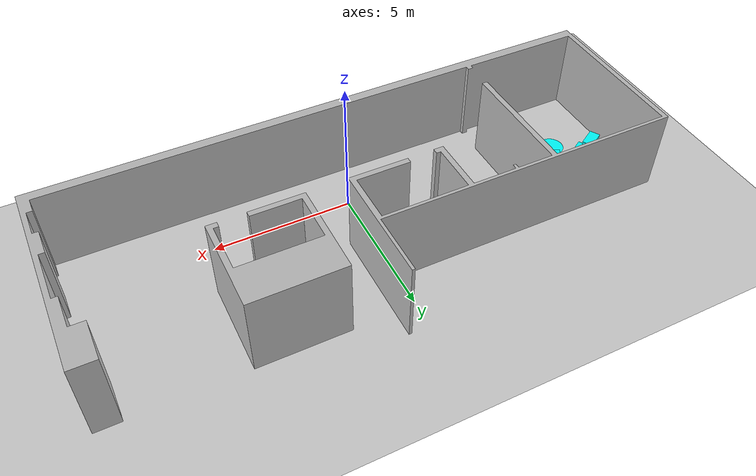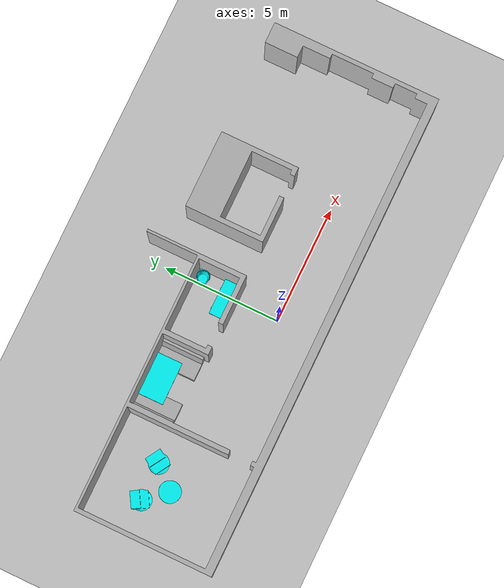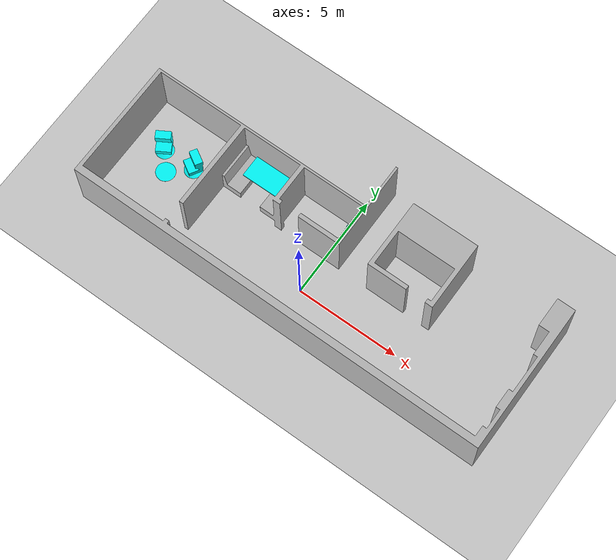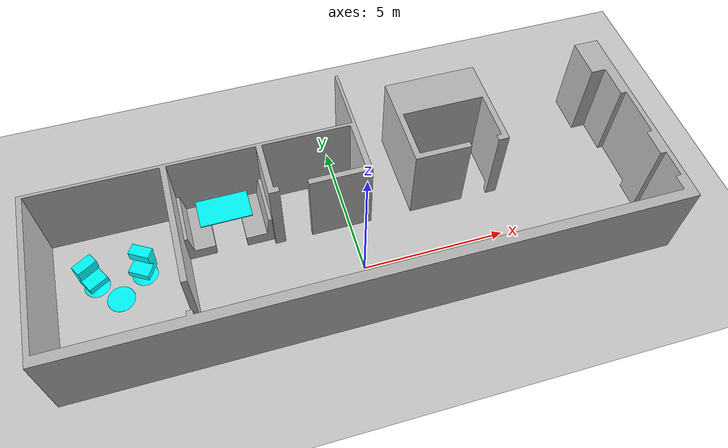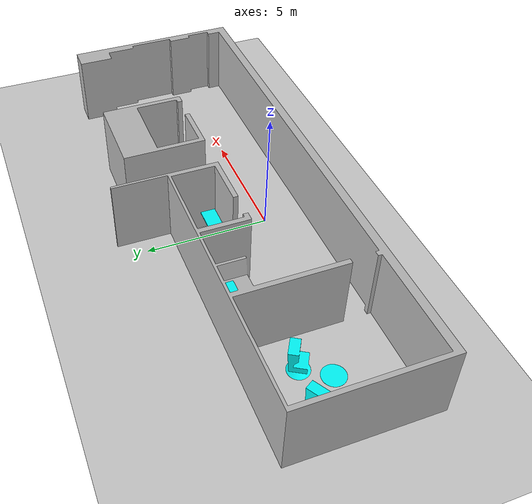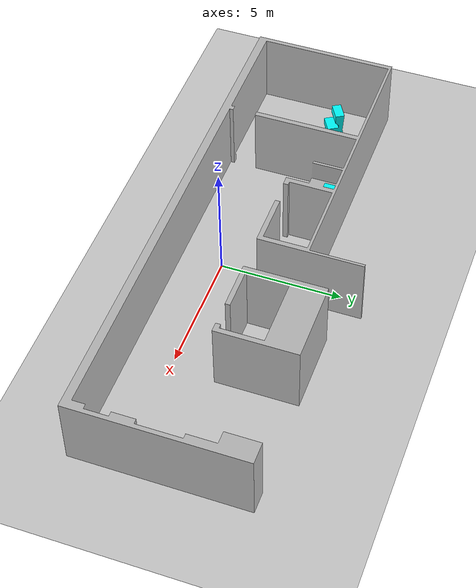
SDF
<sdf version="1.6">
 <world name="default">
  <light name="sun" type="directional">
   <pose>0 0 10 0 -0 0</pose>
   <diffuse>0.8 0.8 0.8 1</diffuse>
   <specular>0.2 0.2 0.2 1</specular>
   <attenuation>
    <range>1000</range>
    <constant>0.9</constant>
    <linear>0.01</linear>
    <quadratic>0.001</quadratic>
   </attenuation>
   <direction>-0.5 0.1 -0.9</direction>
  </light>
  <model name="ground_plane">
   <static>1</static>
   <link name="link">
    <collision name="collision">
     <geometry><plane><normal>0 0 1</normal><size>100 100</size></plane></geometry>
     <surface>
      <contact><collide_bitmask>65535</collide_bitmask></contact>
      <friction><ode><mu>100</mu><mu2>50</mu2></ode></friction>
     </surface>
    </collision>
    <visual name="visual">
     <cast_shadows>0</cast_shadows>
     <geometry><plane><normal>0 0 1</normal><size>100 100</size></plane></geometry>
     <material>
      <script><uri>file://media/materials/scripts/gazebo.material</uri><name>Gazebo/Grey</name></script>
     </material>
    </visual>
   </link>
  </model>
  <gravity>0 0 -9.8</gravity>
  <magnetic_field>6e-06 2.3e-05 -4.2e-05</magnetic_field>
  <atmosphere type="adiabatic"/>
  <physics name="default_physics" default="0" type="ode">
   <max_step_size>0.001</max_step_size>
   <real_time_factor>1</real_time_factor>
   <real_time_update_rate>1000</real_time_update_rate>
  </physics>
  <scene><ambient>0.4 0.4 0.4 1</ambient><background>0.7 0.7 0.7 1</background><shadows>1</shadows></scene>
  <audio><device>default</device></audio>
  <spherical_coordinates>
   <surface_model>EARTH_WGS84</surface_model>
   <latitude_deg>0</latitude_deg>
   <longitude_deg>0</longitude_deg>
   <elevation>0</elevation>
   <heading_deg>0</heading_deg>
  </spherical_coordinates>
  <model name="floorplan">
   <link name="link">
    <inertial>
     <mass>150</mass>
     <inertia><ixx>0</ixx><ixy>0</ixy><ixz>0</ixz><iyy>0</iyy><iyz>0</iyz><izz>1</izz></inertia>
    </inertial>
    <visual name="visual">
     <geometry>
      <mesh><uri>/home/maru/catkin_ws/src/robotics_labs/models/floorplan/meshes/gix216plus.dae</uri></mesh>
     </geometry>
    </visual>
    <collision name="collision">
     <geometry>
      <mesh>
       <uri>/home/maru/catkin_ws/src/robotics_labs/models/floorplan/meshes/gix216plus.dae</uri>
       <scale>1 1 1</scale>
      </mesh>
     </geometry>
     <surface>
      <friction>
       <ode><mu>1</mu><mu2>1</mu2><fdir1>0 0 0</fdir1><slip1>0</slip1><slip2>0</slip2></ode>
       <torsional>
        <coefficient>1</coefficient>
        <patch_radius>0</patch_radius>
        <surface_radius>0</surface_radius>
        <use_patch_radius>1</use_patch_radius>
        <ode><slip>0</slip></ode>
       </torsional>
      </friction>
      <bounce><restitution_coefficient>0</restitution_coefficient><threshold>1e+06</threshold></bounce>
      <contact>
       <collide_without_contact>0</collide_without_contact>
       <collide_without_contact_bitmask>1</collide_without_contact_bitmask>
       <collide_bitmask>1</collide_bitmask>
       <ode>
        <soft_cfm>0</soft_cfm>
        <soft_erp>0.2</soft_erp>
        <kp>1e+13</kp>
        <kd>1</kd>
        <max_vel>0.01</max_vel>
        <min_depth>0</min_depth>
       </ode>
       <bullet>
        <split_impulse>1</split_impulse>
        <split_impulse_penetration_threshold>-0.01</split_impulse_penetration_threshold>
        <soft_cfm>0</soft_cfm>
        <soft_erp>0.2</soft_erp>
        <kp>1e+13</kp>
        <kd>1</kd>
       </bullet>
      </contact>
     </surface>
    </collision>
   </link>
   <static>1</static>
   <pose>0 2 0 0 -0 0</pose>
  </model>
  <model name="wingback_chair">
   <link name="link">
    <inertial>
     <mass>150</mass>
     <inertia><ixx>0</ixx><ixy>0</ixy><ixz>0</ixz><iyy>0</iyy><iyz>0</iyz><izz>1</izz></inertia>
    </inertial>
    <visual name="visual">
     <geometry>
      <mesh>
       <uri>/home/maru/catkin_ws/src/robotics_labs/models/wingback_chair/meshes/wingback_chair_mm.dae</uri>
      </mesh>
     </geometry>
    </visual>
    <collision name="collision">
     <geometry>
      <mesh>
       <uri>/home/maru/catkin_ws/src/robotics_labs/models/wingback_chair/meshes/wingback_chair_mm.dae</uri>
       <scale>1 1 1</scale>
      </mesh>
     </geometry>
     <surface>
      <friction>
       <ode><mu>1</mu><mu2>1</mu2><fdir1>0 0 0</fdir1><slip1>0</slip1><slip2>0</slip2></ode>
       <torsional>
        <coefficient>1</coefficient>
        <patch_radius>0</patch_radius>
        <surface_radius>0</surface_radius>
        <use_patch_radius>1</use_patch_radius>
        <ode><slip>0</slip></ode>
       </torsional>
      </friction>
      <bounce><restitution_coefficient>0</restitution_coefficient><threshold>1e+06</threshold></bounce>
      <contact>
       <collide_without_contact>0</collide_without_contact>
       <collide_without_contact_bitmask>1</collide_without_contact_bitmask>
       <collide_bitmask>1</collide_bitmask>
       <ode>
        <soft_cfm>0</soft_cfm>
        <soft_erp>0.2</soft_erp>
        <kp>1e+13</kp>
        <kd>1</kd>
        <max_vel>0.01</max_vel>
        <min_depth>0</min_depth>
       </ode>
       <bullet>
        <split_impulse>1</split_impulse>
        <split_impulse_penetration_threshold>-0.01</split_impulse_penetration_threshold>
        <soft_cfm>0</soft_cfm>
        <soft_erp>0.2</soft_erp>
        <kp>1e+13</kp>
        <kd>1</kd>
       </bullet>
      </contact>
     </surface>
    </collision>
   </link>
   <static>1</static>
   <pose>-8.82008 1.82005 0 0 -0 0.536406</pose>
  </model>
  <model name="wingback_chair_0">
   <link name="link">
    <inertial>
     <mass>150</mass>
     <inertia><ixx>0</ixx><ixy>0</ixy><ixz>0</ixz><iyy>0</iyy><iyz>0</iyz><izz>1</izz></inertia>
    </inertial>
    <visual name="visual">
     <geometry>
      <mesh>
       <uri>/home/maru/catkin_ws/src/robotics_labs/models/wingback_chair/meshes/wingback_chair_mm.dae</uri>
      </mesh>
     </geometry>
    </visual>
    <collision name="collision">
     <geometry>
      <mesh>
       <uri>/home/maru/catkin_ws/src/robotics_labs/models/wingback_chair/meshes/wingback_chair_mm.dae</uri>
       <scale>1 1 1</scale>
      </mesh>
     </geometry>
     <surface>
      <friction>
       <ode><mu>1</mu><mu2>1</mu2><fdir1>0 0 0</fdir1><slip1>0</slip1><slip2>0</slip2></ode>
       <torsional>
        <coefficient>1</coefficient>
        <patch_radius>0</patch_radius>
        <surface_radius>0</surface_radius>
        <use_patch_radius>1</use_patch_radius>
        <ode><slip>0</slip></ode>
       </torsional>
      </friction>
      <bounce><restitution_coefficient>0</restitution_coefficient><threshold>1e+06</threshold></bounce>
      <contact>
       <collide_without_contact>0</collide_without_contact>
       <collide_without_contact_bitmask>1</collide_without_contact_bitmask>
       <collide_bitmask>1</collide_bitmask>
       <ode>
        <soft_cfm>0</soft_cfm>
        <soft_erp>0.2</soft_erp>
        <kp>1e+13</kp>
        <kd>1</kd>
        <max_vel>0.01</max_vel>
        <min_depth>0</min_depth>
       </ode>
       <bullet>
        <split_impulse>1</split_impulse>
        <split_impulse_penetration_threshold>-0.01</split_impulse_penetration_threshold>
        <soft_cfm>0</soft_cfm>
        <soft_erp>0.2</soft_erp>
        <kp>1e+13</kp>
        <kd>1</kd>
       </bullet>
      </contact>
     </surface>
    </collision>
   </link>
   <static>1</static>
   <pose>-7.21234 1.82 0 0 0 -0.541861</pose>
  </model>
  <model name="coffee_table">
   <link name="link">
    <inertial>
     <mass>150</mass>
     <inertia><ixx>0</ixx><ixy>0</ixy><ixz>0</ixz><iyy>0</iyy><iyz>0</iyz><izz>1</izz></inertia>
    </inertial>
    <visual name="visual">
     <geometry>
      <mesh><uri>/home/maru/catkin_ws/src/robotics_labs/models/coffee_table/meshes/round_table_mm.dae</uri></mesh>
     </geometry>
    </visual>
    <collision name="collision">
     <geometry>
      <mesh>
       <uri>/home/maru/catkin_ws/src/robotics_labs/models/coffee_table/meshes/round_table_mm.dae</uri>
       <scale>1 1 1</scale>
      </mesh>
     </geometry>
     <surface>
      <friction>
       <ode><mu>1</mu><mu2>1</mu2><fdir1>0 0 0</fdir1><slip1>0</slip1><slip2>0</slip2></ode>
       <torsional>
        <coefficient>1</coefficient>
        <patch_radius>0</patch_radius>
        <surface_radius>0</surface_radius>
        <use_patch_radius>1</use_patch_radius>
        <ode><slip>0</slip></ode>
       </torsional>
      </friction>
      <bounce><restitution_coefficient>0</restitution_coefficient><threshold>1e+06</threshold></bounce>
      <contact>
       <collide_without_contact>0</collide_without_contact>
       <collide_without_contact_bitmask>1</collide_without_contact_bitmask>
       <collide_bitmask>1</collide_bitmask>
       <ode>
        <soft_cfm>0</soft_cfm>
        <soft_erp>0.2</soft_erp>
        <kp>1e+13</kp>
        <kd>1</kd>
        <max_vel>0.01</max_vel>
        <min_depth>0</min_depth>
       </ode>
       <bullet>
        <split_impulse>1</split_impulse>
        <split_impulse_penetration_threshold>-0.01</split_impulse_penetration_threshold>
        <soft_cfm>0</soft_cfm>
        <soft_erp>0.2</soft_erp>
        <kp>1e+13</kp>
        <kd>1</kd>
       </bullet>
      </contact>
     </surface>
    </collision>
   </link>
   <static>1</static>
   <pose>-8.02558 0.919014 0 0 -0 0</pose>
  </model>
  <model name="kitchen_station_table">
   <link name="link">
    <inertial>
     <mass>150</mass>
     <inertia><ixx>0</ixx><ixy>0</ixy><ixz>0</ixz><iyy>0</iyy><iyz>0</iyz><izz>1</izz></inertia>
    </inertial>
    <visual name="visual">
     <geometry>
      <mesh>
       <uri>/home/maru/catkin_ws/src/robotics_labs/models/kitchen_station_table/meshes/booth_table_mm.dae</uri>
      </mesh>
     </geometry>
    </visual>
    <collision name="collision">
     <geometry>
      <mesh>
       <uri>/home/maru/catkin_ws/src/robotics_labs/models/kitchen_station_table/meshes/booth_table_mm.dae</uri>
       <scale>1 1 1</scale>
      </mesh>
     </geometry>
     <surface>
      <friction>
       <ode><mu>1</mu><mu2>1</mu2><fdir1>0 0 0</fdir1><slip1>0</slip1><slip2>0</slip2></ode>
       <torsional>
        <coefficient>1</coefficient>
        <patch_radius>0</patch_radius>
        <surface_radius>0</surface_radius>
        <use_patch_radius>1</use_patch_radius>
        <ode><slip>0</slip></ode>
       </torsional>
      </friction>
      <bounce><restitution_coefficient>0</restitution_coefficient><threshold>1e+06</threshold></bounce>
      <contact>
       <collide_without_contact>0</collide_without_contact>
       <collide_without_contact_bitmask>1</collide_without_contact_bitmask>
       <collide_bitmask>1</collide_bitmask>
       <ode>
        <soft_cfm>0</soft_cfm>
        <soft_erp>0.2</soft_erp>
        <kp>1e+13</kp>
        <kd>1</kd>
        <max_vel>0.01</max_vel>
        <min_depth>0</min_depth>
       </ode>
       <bullet>
        <split_impulse>1</split_impulse>
        <split_impulse_penetration_threshold>-0.01</split_impulse_penetration_threshold>
        <soft_cfm>0</soft_cfm>
        <soft_erp>0.2</soft_erp>
        <kp>1e+13</kp>
        <kd>1</kd>
       </bullet>
      </contact>
     </surface>
    </collision>
   </link>
   <static>1</static>
   <pose>-4.16285 3.20384 0 0 0 -1.56686</pose>
  </model>
  <model name="rolling_table">
   <link name="link">
    <inertial>
     <mass>150</mass>
     <inertia><ixx>0</ixx><ixy>0</ixy><ixz>0</ixz><iyy>0</iyy><iyz>0</iyz><izz>1</izz></inertia>
    </inertial>
    <visual name="visual">
     <geometry>
      <mesh>
       <uri>/home/maru/catkin_ws/src/robotics_labs/models/rolling_table/meshes/rolling_table_mm.dae</uri>
      </mesh>
     </geometry>
    </visual>
    <collision name="collision">
     <geometry>
      <mesh>
       <uri>/home/maru/catkin_ws/src/robotics_labs/models/rolling_table/meshes/rolling_table_mm.dae</uri>
       <scale>1 1 1</scale>
      </mesh>
     </geometry>
     <surface>
      <friction>
       <ode><mu>1</mu><mu2>1</mu2><fdir1>0 0 0</fdir1><slip1>0</slip1><slip2>0</slip2></ode>
       <torsional>
        <coefficient>1</coefficient>
        <patch_radius>0</patch_radius>
        <surface_radius>0</surface_radius>
        <use_patch_radius>1</use_patch_radius>
        <ode><slip>0</slip></ode>
       </torsional>
      </friction>
      <bounce><restitution_coefficient>0</restitution_coefficient><threshold>1e+06</threshold></bounce>
      <contact>
       <collide_without_contact>0</collide_without_contact>
       <collide_without_contact_bitmask>1</collide_without_contact_bitmask>
       <collide_bitmask>1</collide_bitmask>
       <ode>
        <soft_cfm>0</soft_cfm>
        <soft_erp>0.2</soft_erp>
        <kp>1e+13</kp>
        <kd>1</kd>
        <max_vel>0.01</max_vel>
        <min_depth>0</min_depth>
       </ode>
       <bullet>
        <split_impulse>1</split_impulse>
        <split_impulse_penetration_threshold>-0.01</split_impulse_penetration_threshold>
        <soft_cfm>0</soft_cfm>
        <soft_erp>0.2</soft_erp>
        <kp>1e+13</kp>
        <kd>1</kd>
       </bullet>
      </contact>
     </surface>
    </collision>
   </link>
   <static>1</static>
   <pose>-0.214959 2.29514 0 0 -0 0</pose>
  </model>
  <model name="trash_can">
   <link name="link">
    <inertial>
     <mass>150</mass>
     <inertia><ixx>0</ixx><ixy>0</ixy><ixz>0</ixz><iyy>0</iyy><iyz>0</iyz><izz>1</izz></inertia>
    </inertial>
    <visual name="visual">
     <geometry>
      <mesh><uri>/home/maru/catkin_ws/src/robotics_labs/models/trash_can/meshes/trash_can_mm.dae</uri></mesh>
     </geometry>
    </visual>
    <collision name="collision">
     <geometry>
      <mesh>
       <uri>/home/maru/catkin_ws/src/robotics_labs/models/trash_can/meshes/trash_can_mm.dae</uri>
       <scale>1 1 1</scale>
      </mesh>
     </geometry>
     <surface>
      <friction>
       <ode><mu>1</mu><mu2>1</mu2><fdir1>0 0 0</fdir1><slip1>0</slip1><slip2>0</slip2></ode>
       <torsional>
        <coefficient>1</coefficient>
        <patch_radius>0</patch_radius>
        <surface_radius>0</surface_radius>
        <use_patch_radius>1</use_patch_radius>
        <ode><slip>0</slip></ode>
       </torsional>
      </friction>
      <bounce><restitution_coefficient>0</restitution_coefficient><threshold>1e+06</threshold></bounce>
      <contact>
       <collide_without_contact>0</collide_without_contact>
       <collide_without_contact_bitmask>1</collide_without_contact_bitmask>
       <collide_bitmask>1</collide_bitmask>
       <ode>
        <soft_cfm>0</soft_cfm>
        <soft_erp>0.2</soft_erp>
        <kp>1e+13</kp>
        <kd>1</kd>
        <max_vel>0.01</max_vel>
        <min_depth>0</min_depth>
       </ode>
       <bullet>
        <split_impulse>1</split_impulse>
        <split_impulse_penetration_threshold>-0.01</split_impulse_penetration_threshold>
        <soft_cfm>0</soft_cfm>
        <soft_erp>0.2</soft_erp>
        <kp>1e+13</kp>
        <kd>1</kd>
       </bullet>
      </contact>
     </surface>
    </collision>
   </link>
   <static>1</static>
   <pose>0.279088 3.44647 0 0 0 -0.851021</pose>
  </model>
 </world>
</sdf>
